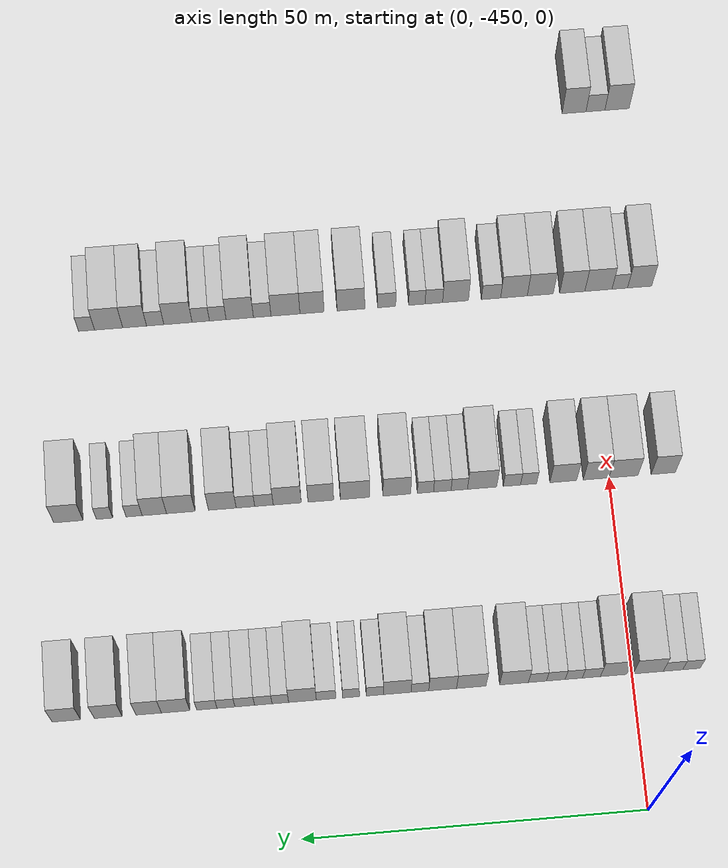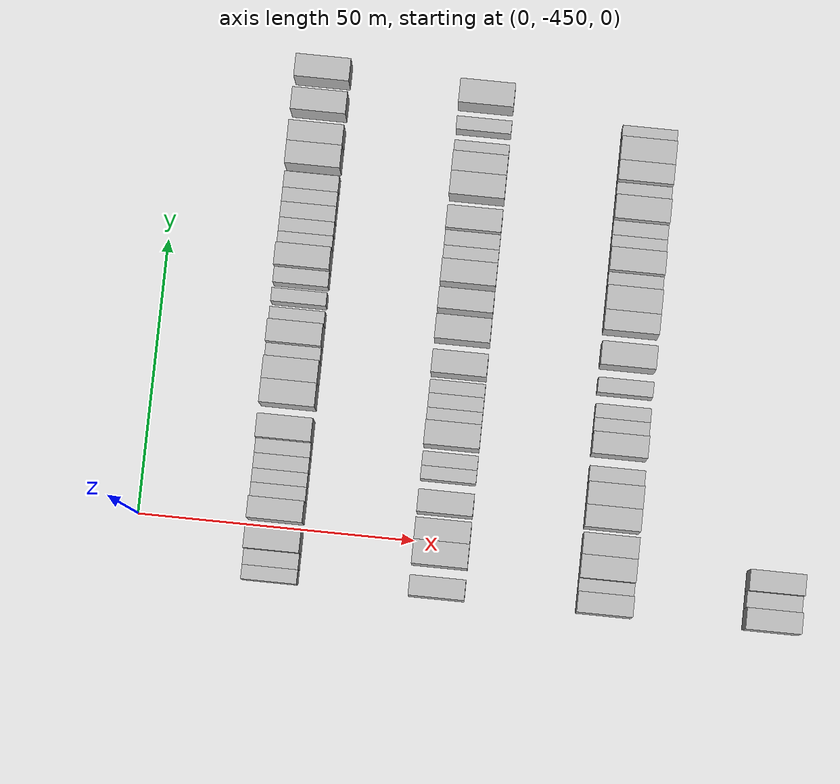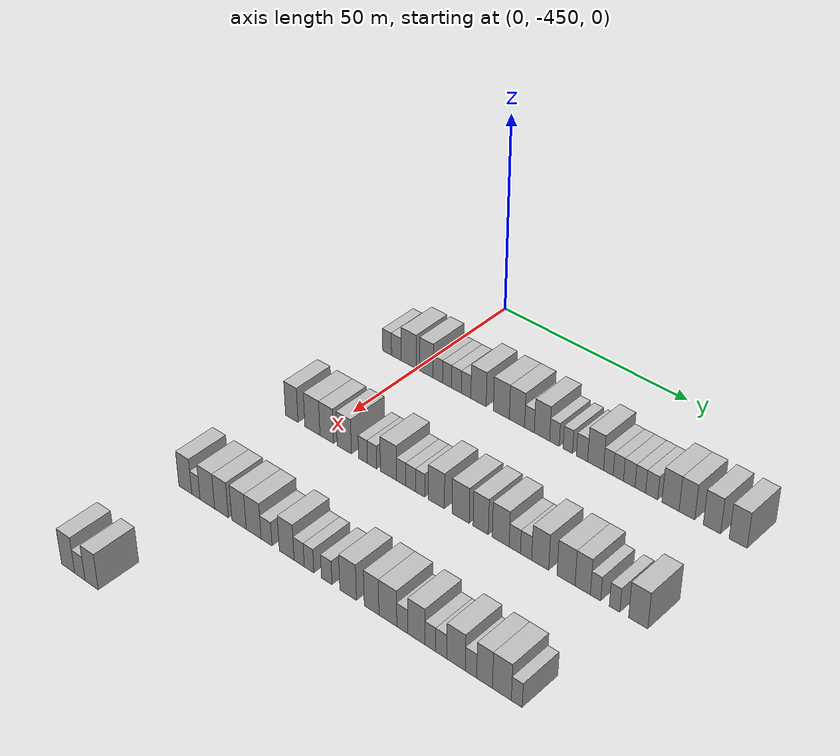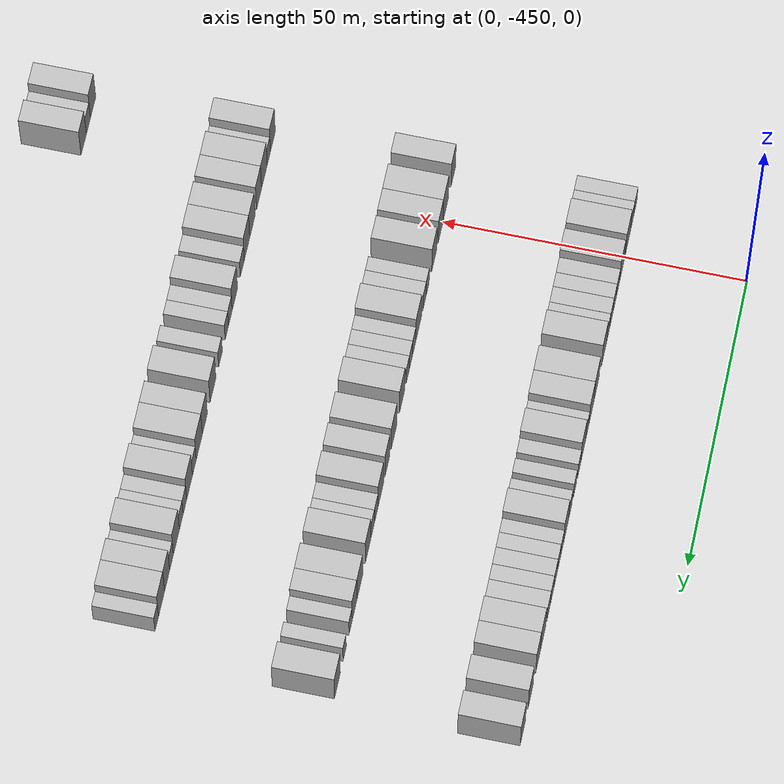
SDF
<sdf version="1.6">
 <world name="default">
  <model name="building_1">
   <static>1</static>
   <pose>25.0000 -458.7097 0 0.000000 0.000000 0.000000</pose>
   <link name="link">
    <pose>0 0 3.00 0 0 0</pose>
    <collision name="collision"><geometry><box><size>10.0000 2.5806 6.0000</size></box></geometry></collision>
    <visual name="visual">
     <cast_shadows>0</cast_shadows>
     <geometry><box><size>10.0000 2.5806 6.0000</size></box></geometry>
     <material>
      <script>
       <uri>model://HANNAS_wall/materials/scripts</uri>
       <uri>model://HANNAS_wall/materials/textures</uri>
       <name>vrc/HANNAS_wall</name>
      </script>
     </material>
    </visual>
   </link>
  </model>
  <model name="building_2">
   <static>1</static>
   <pose>25.0000 -455.9895 0 0.000000 0.000000 0.000000</pose>
   <link name="link">
    <pose>0 0 3.00 0 0 0</pose>
    <collision name="collision"><geometry><box><size>10.0000 2.8598 6.0000</size></box></geometry></collision>
    <visual name="visual">
     <cast_shadows>0</cast_shadows>
     <geometry><box><size>10.0000 2.8598 6.0000</size></box></geometry>
     <material>
      <script>
       <uri>model://HANNAS_wall/materials/scripts</uri>
       <uri>model://HANNAS_wall/materials/textures</uri>
       <name>vrc/HANNAS_wall</name>
      </script>
     </material>
    </visual>
   </link>
  </model>
  <model name="building_3">
   <static>1</static>
   <pose>25.0000 -452.3602 0 0.000000 0.000000 0.000000</pose>
   <link name="link">
    <pose>0 0 4.50 0 0 0</pose>
    <collision name="collision"><geometry><box><size>10.0000 4.3987 9.0000</size></box></geometry></collision>
    <visual name="visual">
     <cast_shadows>0</cast_shadows>
     <geometry><box><size>10.0000 4.3987 9.0000</size></box></geometry>
     <material>
      <script>
       <uri>model://HANNAS_wall/materials/scripts</uri>
       <uri>model://HANNAS_wall/materials/textures</uri>
       <name>vrc/HANNAS_wall</name>
      </script>
     </material>
    </visual>
   </link>
  </model>
  <model name="building_4">
   <static>1</static>
   <pose>25.0000 -447.2321 0 0.000000 0.000000 0.000000</pose>
   <link name="link">
    <pose>0 0 4.50 0 0 0</pose>
    <collision name="collision"><geometry><box><size>10.0000 3.8574 9.0000</size></box></geometry></collision>
    <visual name="visual">
     <cast_shadows>0</cast_shadows>
     <geometry><box><size>10.0000 3.8574 9.0000</size></box></geometry>
     <material>
      <script>
       <uri>model://HANNAS_wall/materials/scripts</uri>
       <uri>model://HANNAS_wall/materials/textures</uri>
       <name>vrc/HANNAS_wall</name>
      </script>
     </material>
    </visual>
   </link>
  </model>
  <model name="building_5">
   <static>1</static>
   <pose>25.0000 -443.9715 0 0.000000 0.000000 0.000000</pose>
   <link name="link">
    <pose>0 0 3.00 0 0 0</pose>
    <collision name="collision"><geometry><box><size>10.0000 2.6639 6.0000</size></box></geometry></collision>
    <visual name="visual">
     <cast_shadows>0</cast_shadows>
     <geometry><box><size>10.0000 2.6639 6.0000</size></box></geometry>
     <material>
      <script>
       <uri>model://HANNAS_wall/materials/scripts</uri>
       <uri>model://HANNAS_wall/materials/textures</uri>
       <name>vrc/HANNAS_wall</name>
      </script>
     </material>
    </visual>
   </link>
  </model>
  <model name="building_6">
   <static>1</static>
   <pose>25.0000 -441.3762 0 0.000000 0.000000 0.000000</pose>
   <link name="link">
    <pose>0 0 3.00 0 0 0</pose>
    <collision name="collision"><geometry><box><size>10.0000 2.5268 6.0000</size></box></geometry></collision>
    <visual name="visual">
     <cast_shadows>0</cast_shadows>
     <geometry><box><size>10.0000 2.5268 6.0000</size></box></geometry>
     <material>
      <script>
       <uri>model://HANNAS_wall/materials/scripts</uri>
       <uri>model://HANNAS_wall/materials/textures</uri>
       <name>vrc/HANNAS_wall</name>
      </script>
     </material>
    </visual>
   </link>
  </model>
  <model name="building_7">
   <static>1</static>
   <pose>25.0000 -438.7373 0 0.000000 0.000000 0.000000</pose>
   <link name="link">
    <pose>0 0 3.00 0 0 0</pose>
    <collision name="collision"><geometry><box><size>10.0000 2.7510 6.0000</size></box></geometry></collision>
    <visual name="visual">
     <cast_shadows>0</cast_shadows>
     <geometry><box><size>10.0000 2.7510 6.0000</size></box></geometry>
     <material>
      <script>
       <uri>model://HANNAS_wall/materials/scripts</uri>
       <uri>model://HANNAS_wall/materials/textures</uri>
       <name>vrc/HANNAS_wall</name>
      </script>
     </material>
    </visual>
   </link>
  </model>
  <model name="building_8">
   <static>1</static>
   <pose>25.0000 -436.0345 0 0.000000 0.000000 0.000000</pose>
   <link name="link">
    <pose>0 0 3.00 0 0 0</pose>
    <collision name="collision"><geometry><box><size>10.0000 2.6544 6.0000</size></box></geometry></collision>
    <visual name="visual">
     <cast_shadows>0</cast_shadows>
     <geometry><box><size>10.0000 2.6544 6.0000</size></box></geometry>
     <material>
      <script>
       <uri>model://HANNAS_wall/materials/scripts</uri>
       <uri>model://HANNAS_wall/materials/textures</uri>
       <name>vrc/HANNAS_wall</name>
      </script>
     </material>
    </visual>
   </link>
  </model>
  <model name="building_9">
   <static>1</static>
   <pose>25.0000 -432.5922 0 0.000000 0.000000 0.000000</pose>
   <link name="link">
    <pose>0 0 4.50 0 0 0</pose>
    <collision name="collision"><geometry><box><size>10.0000 4.2303 9.0000</size></box></geometry></collision>
    <visual name="visual">
     <cast_shadows>0</cast_shadows>
     <geometry><box><size>10.0000 4.2303 9.0000</size></box></geometry>
     <material>
      <script>
       <uri>model://HANNAS_wall/materials/scripts</uri>
       <uri>model://HANNAS_wall/materials/textures</uri>
       <name>vrc/HANNAS_wall</name>
      </script>
     </material>
    </visual>
   </link>
  </model>
  <model name="building_10">
   <static>1</static>
   <pose>25.0000 -426.3155 0 0.000000 0.000000 0.000000</pose>
   <link name="link">
    <pose>0 0 4.50 0 0 0</pose>
    <collision name="collision"><geometry><box><size>10.0000 4.3231 9.0000</size></box></geometry></collision>
    <visual name="visual">
     <cast_shadows>0</cast_shadows>
     <geometry><box><size>10.0000 4.3231 9.0000</size></box></geometry>
     <material>
      <script>
       <uri>model://HANNAS_wall/materials/scripts</uri>
       <uri>model://HANNAS_wall/materials/textures</uri>
       <name>vrc/HANNAS_wall</name>
      </script>
     </material>
    </visual>
   </link>
  </model>
  <model name="building_11">
   <static>1</static>
   <pose>25.0000 -422.1147 0 0.000000 0.000000 0.000000</pose>
   <link name="link">
    <pose>0 0 4.50 0 0 0</pose>
    <collision name="collision"><geometry><box><size>10.0000 4.0785 9.0000</size></box></geometry></collision>
    <visual name="visual">
     <cast_shadows>0</cast_shadows>
     <geometry><box><size>10.0000 4.0785 9.0000</size></box></geometry>
     <material>
      <script>
       <uri>model://HANNAS_wall/materials/scripts</uri>
       <uri>model://HANNAS_wall/materials/textures</uri>
       <name>vrc/HANNAS_wall</name>
      </script>
     </material>
    </visual>
   </link>
  </model>
  <model name="building_12">
   <static>1</static>
   <pose>25.0000 -418.7871 0 0.000000 0.000000 0.000000</pose>
   <link name="link">
    <pose>0 0 3.00 0 0 0</pose>
    <collision name="collision"><geometry><box><size>10.0000 2.5768 6.0000</size></box></geometry></collision>
    <visual name="visual">
     <cast_shadows>0</cast_shadows>
     <geometry><box><size>10.0000 2.5768 6.0000</size></box></geometry>
     <material>
      <script>
       <uri>model://HANNAS_wall/materials/scripts</uri>
       <uri>model://HANNAS_wall/materials/textures</uri>
       <name>vrc/HANNAS_wall</name>
      </script>
     </material>
    </visual>
   </link>
  </model>
  <model name="building_13">
   <static>1</static>
   <pose>25.0000 -415.4768 0 0.000000 0.000000 0.000000</pose>
   <link name="link">
    <pose>0 0 4.50 0 0 0</pose>
    <collision name="collision"><geometry><box><size>10.0000 4.0438 9.0000</size></box></geometry></collision>
    <visual name="visual">
     <cast_shadows>0</cast_shadows>
     <geometry><box><size>10.0000 4.0438 9.0000</size></box></geometry>
     <material>
      <script>
       <uri>model://HANNAS_wall/materials/scripts</uri>
       <uri>model://HANNAS_wall/materials/textures</uri>
       <name>vrc/HANNAS_wall</name>
      </script>
     </material>
    </visual>
   </link>
  </model>
  <model name="building_14">
   <static>1</static>
   <pose>25.0000 -412.1914 0 0.000000 0.000000 0.000000</pose>
   <link name="link">
    <pose>0 0 3.00 0 0 0</pose>
    <collision name="collision"><geometry><box><size>10.0000 2.5270 6.0000</size></box></geometry></collision>
    <visual name="visual">
     <cast_shadows>0</cast_shadows>
     <geometry><box><size>10.0000 2.5270 6.0000</size></box></geometry>
     <material>
      <script>
       <uri>model://HANNAS_wall/materials/scripts</uri>
       <uri>model://HANNAS_wall/materials/textures</uri>
       <name>vrc/HANNAS_wall</name>
      </script>
     </material>
    </visual>
   </link>
  </model>
  <model name="building_15">
   <static>1</static>
   <pose>25.0000 -408.7061 0 0.000000 0.000000 0.000000</pose>
   <link name="link">
    <pose>0 0 3.00 0 0 0</pose>
    <collision name="collision"><geometry><box><size>10.0000 2.4434 6.0000</size></box></geometry></collision>
    <visual name="visual">
     <cast_shadows>0</cast_shadows>
     <geometry><box><size>10.0000 2.4434 6.0000</size></box></geometry>
     <material>
      <script>
       <uri>model://HANNAS_wall/materials/scripts</uri>
       <uri>model://HANNAS_wall/materials/textures</uri>
       <name>vrc/HANNAS_wall</name>
      </script>
     </material>
    </visual>
   </link>
  </model>
  <model name="building_16">
   <static>1</static>
   <pose>25.0000 -405.0560 0 0.000000 0.000000 0.000000</pose>
   <link name="link">
    <pose>0 0 3.00 0 0 0</pose>
    <collision name="collision"><geometry><box><size>10.0000 2.8570 6.0000</size></box></geometry></collision>
    <visual name="visual">
     <cast_shadows>0</cast_shadows>
     <geometry><box><size>10.0000 2.8570 6.0000</size></box></geometry>
     <material>
      <script>
       <uri>model://HANNAS_wall/materials/scripts</uri>
       <uri>model://HANNAS_wall/materials/textures</uri>
       <name>vrc/HANNAS_wall</name>
      </script>
     </material>
    </visual>
   </link>
  </model>
  <model name="building_17">
   <static>1</static>
   <pose>25.0000 -401.5997 0 0.000000 0.000000 0.000000</pose>
   <link name="link">
    <pose>0 0 4.50 0 0 0</pose>
    <collision name="collision"><geometry><box><size>10.0000 4.0554 9.0000</size></box></geometry></collision>
    <visual name="visual">
     <cast_shadows>0</cast_shadows>
     <geometry><box><size>10.0000 4.0554 9.0000</size></box></geometry>
     <material>
      <script>
       <uri>model://HANNAS_wall/materials/scripts</uri>
       <uri>model://HANNAS_wall/materials/textures</uri>
       <name>vrc/HANNAS_wall</name>
      </script>
     </material>
    </visual>
   </link>
  </model>
  <model name="building_18">
   <static>1</static>
   <pose>25.0000 -398.3646 0 0.000000 0.000000 0.000000</pose>
   <link name="link">
    <pose>0 0 3.00 0 0 0</pose>
    <collision name="collision"><geometry><box><size>10.0000 2.4149 6.0000</size></box></geometry></collision>
    <visual name="visual">
     <cast_shadows>0</cast_shadows>
     <geometry><box><size>10.0000 2.4149 6.0000</size></box></geometry>
     <material>
      <script>
       <uri>model://HANNAS_wall/materials/scripts</uri>
       <uri>model://HANNAS_wall/materials/textures</uri>
       <name>vrc/HANNAS_wall</name>
      </script>
     </material>
    </visual>
   </link>
  </model>
  <model name="building_19">
   <static>1</static>
   <pose>25.0000 -395.8780 0 0.000000 0.000000 0.000000</pose>
   <link name="link">
    <pose>0 0 3.00 0 0 0</pose>
    <collision name="collision"><geometry><box><size>10.0000 2.5582 6.0000</size></box></geometry></collision>
    <visual name="visual">
     <cast_shadows>0</cast_shadows>
     <geometry><box><size>10.0000 2.5582 6.0000</size></box></geometry>
     <material>
      <script>
       <uri>model://HANNAS_wall/materials/scripts</uri>
       <uri>model://HANNAS_wall/materials/textures</uri>
       <name>vrc/HANNAS_wall</name>
      </script>
     </material>
    </visual>
   </link>
  </model>
  <model name="building_20">
   <static>1</static>
   <pose>25.0000 -393.1696 0 0.000000 0.000000 0.000000</pose>
   <link name="link">
    <pose>0 0 3.00 0 0 0</pose>
    <collision name="collision"><geometry><box><size>10.0000 2.8586 6.0000</size></box></geometry></collision>
    <visual name="visual">
     <cast_shadows>0</cast_shadows>
     <geometry><box><size>10.0000 2.8586 6.0000</size></box></geometry>
     <material>
      <script>
       <uri>model://HANNAS_wall/materials/scripts</uri>
       <uri>model://HANNAS_wall/materials/textures</uri>
       <name>vrc/HANNAS_wall</name>
      </script>
     </material>
    </visual>
   </link>
  </model>
  <model name="building_21">
   <static>1</static>
   <pose>25.0000 -390.4331 0 0.000000 0.000000 0.000000</pose>
   <link name="link">
    <pose>0 0 3.00 0 0 0</pose>
    <collision name="collision"><geometry><box><size>10.0000 2.6144 6.0000</size></box></geometry></collision>
    <visual name="visual">
     <cast_shadows>0</cast_shadows>
     <geometry><box><size>10.0000 2.6144 6.0000</size></box></geometry>
     <material>
      <script>
       <uri>model://HANNAS_wall/materials/scripts</uri>
       <uri>model://HANNAS_wall/materials/textures</uri>
       <name>vrc/HANNAS_wall</name>
      </script>
     </material>
    </visual>
   </link>
  </model>
  <model name="building_22">
   <static>1</static>
   <pose>25.0000 -387.6450 0 0.000000 0.000000 0.000000</pose>
   <link name="link">
    <pose>0 0 3.00 0 0 0</pose>
    <collision name="collision"><geometry><box><size>10.0000 2.9618 6.0000</size></box></geometry></collision>
    <visual name="visual">
     <cast_shadows>0</cast_shadows>
     <geometry><box><size>10.0000 2.9618 6.0000</size></box></geometry>
     <material>
      <script>
       <uri>model://HANNAS_wall/materials/scripts</uri>
       <uri>model://HANNAS_wall/materials/textures</uri>
       <name>vrc/HANNAS_wall</name>
      </script>
     </material>
    </visual>
   </link>
  </model>
  <model name="building_23">
   <static>1</static>
   <pose>25.0000 -383.0894 0 0.000000 0.000000 0.000000</pose>
   <link name="link">
    <pose>0 0 4.50 0 0 0</pose>
    <collision name="collision"><geometry><box><size>10.0000 4.1492 9.0000</size></box></geometry></collision>
    <visual name="visual">
     <cast_shadows>0</cast_shadows>
     <geometry><box><size>10.0000 4.1492 9.0000</size></box></geometry>
     <material>
      <script>
       <uri>model://HANNAS_wall/materials/scripts</uri>
       <uri>model://HANNAS_wall/materials/textures</uri>
       <name>vrc/HANNAS_wall</name>
      </script>
     </material>
    </visual>
   </link>
  </model>
  <model name="building_24">
   <static>1</static>
   <pose>25.0000 -379.1485 0 0.000000 0.000000 0.000000</pose>
   <link name="link">
    <pose>0 0 4.50 0 0 0</pose>
    <collision name="collision"><geometry><box><size>10.0000 3.7327 9.0000</size></box></geometry></collision>
    <visual name="visual">
     <cast_shadows>0</cast_shadows>
     <geometry><box><size>10.0000 3.7327 9.0000</size></box></geometry>
     <material>
      <script>
       <uri>model://HANNAS_wall/materials/scripts</uri>
       <uri>model://HANNAS_wall/materials/textures</uri>
       <name>vrc/HANNAS_wall</name>
      </script>
     </material>
    </visual>
   </link>
  </model>
  <model name="building_25">
   <static>1</static>
   <pose>25.0000 -373.2622 0 0.000000 0.000000 0.000000</pose>
   <link name="link">
    <pose>0 0 4.50 0 0 0</pose>
    <collision name="collision"><geometry><box><size>10.0000 4.0399 9.0000</size></box></geometry></collision>
    <visual name="visual">
     <cast_shadows>0</cast_shadows>
     <geometry><box><size>10.0000 4.0399 9.0000</size></box></geometry>
     <material>
      <script>
       <uri>model://HANNAS_wall/materials/scripts</uri>
       <uri>model://HANNAS_wall/materials/textures</uri>
       <name>vrc/HANNAS_wall</name>
      </script>
     </material>
    </visual>
   </link>
  </model>
  <model name="building_26">
   <static>1</static>
   <pose>25.0000 -367.1786 0 0.000000 0.000000 0.000000</pose>
   <link name="link">
    <pose>0 0 4.50 0 0 0</pose>
    <collision name="collision"><geometry><box><size>10.0000 4.1273 9.0000</size></box></geometry></collision>
    <visual name="visual">
     <cast_shadows>0</cast_shadows>
     <geometry><box><size>10.0000 4.1273 9.0000</size></box></geometry>
     <material>
      <script>
       <uri>model://HANNAS_wall/materials/scripts</uri>
       <uri>model://HANNAS_wall/materials/textures</uri>
       <name>vrc/HANNAS_wall</name>
      </script>
     </material>
    </visual>
   </link>
  </model>
  <model name="building_231">
   <static>1</static>
   <pose>55.0000 -458.1731 0 0.000000 0.000000 0.000000</pose>
   <link name="link">
    <pose>0 0 4.50 0 0 0</pose>
    <collision name="collision"><geometry><box><size>10.0000 3.6538 9.0000</size></box></geometry></collision>
    <visual name="visual">
     <cast_shadows>0</cast_shadows>
     <geometry><box><size>10.0000 3.6538 9.0000</size></box></geometry>
     <material>
      <script>
       <uri>model://HANNAS_wall/materials/scripts</uri>
       <uri>model://HANNAS_wall/materials/textures</uri>
       <name>vrc/HANNAS_wall</name>
      </script>
     </material>
    </visual>
   </link>
  </model>
  <model name="building_232">
   <static>1</static>
   <pose>55.0000 -452.1603 0 0.000000 0.000000 0.000000</pose>
   <link name="link">
    <pose>0 0 4.50 0 0 0</pose>
    <collision name="collision"><geometry><box><size>10.0000 4.3717 9.0000</size></box></geometry></collision>
    <visual name="visual">
     <cast_shadows>0</cast_shadows>
     <geometry><box><size>10.0000 4.3717 9.0000</size></box></geometry>
     <material>
      <script>
       <uri>model://HANNAS_wall/materials/scripts</uri>
       <uri>model://HANNAS_wall/materials/textures</uri>
       <name>vrc/HANNAS_wall</name>
      </script>
     </material>
    </visual>
   </link>
  </model>
  <model name="building_233">
   <static>1</static>
   <pose>55.0000 -448.0257 0 0.000000 0.000000 0.000000</pose>
   <link name="link">
    <pose>0 0 4.50 0 0 0</pose>
    <collision name="collision"><geometry><box><size>10.0000 3.8976 9.0000</size></box></geometry></collision>
    <visual name="visual">
     <cast_shadows>0</cast_shadows>
     <geometry><box><size>10.0000 3.8976 9.0000</size></box></geometry>
     <material>
      <script>
       <uri>model://HANNAS_wall/materials/scripts</uri>
       <uri>model://HANNAS_wall/materials/textures</uri>
       <name>vrc/HANNAS_wall</name>
      </script>
     </material>
    </visual>
   </link>
  </model>
  <model name="building_234">
   <static>1</static>
   <pose>55.0000 -443.0671 0 0.000000 0.000000 0.000000</pose>
   <link name="link">
    <pose>0 0 4.50 0 0 0</pose>
    <collision name="collision"><geometry><box><size>10.0000 4.0197 9.0000</size></box></geometry></collision>
    <visual name="visual">
     <cast_shadows>0</cast_shadows>
     <geometry><box><size>10.0000 4.0197 9.0000</size></box></geometry>
     <material>
      <script>
       <uri>model://HANNAS_wall/materials/scripts</uri>
       <uri>model://HANNAS_wall/materials/textures</uri>
       <name>vrc/HANNAS_wall</name>
      </script>
     </material>
    </visual>
   </link>
  </model>
  <model name="building_235">
   <static>1</static>
   <pose>55.0000 -437.8463 0 0.000000 0.000000 0.000000</pose>
   <link name="link">
    <pose>0 0 3.00 0 0 0</pose>
    <collision name="collision"><geometry><box><size>10.0000 2.4219 6.0000</size></box></geometry></collision>
    <visual name="visual">
     <cast_shadows>0</cast_shadows>
     <geometry><box><size>10.0000 2.4219 6.0000</size></box></geometry>
     <material>
      <script>
       <uri>model://HANNAS_wall/materials/scripts</uri>
       <uri>model://HANNAS_wall/materials/textures</uri>
       <name>vrc/HANNAS_wall</name>
      </script>
     </material>
    </visual>
   </link>
  </model>
  <model name="building_236">
   <static>1</static>
   <pose>55.0000 -435.3372 0 0.000000 0.000000 0.000000</pose>
   <link name="link">
    <pose>0 0 3.00 0 0 0</pose>
    <collision name="collision"><geometry><box><size>10.0000 2.5964 6.0000</size></box></geometry></collision>
    <visual name="visual">
     <cast_shadows>0</cast_shadows>
     <geometry><box><size>10.0000 2.5964 6.0000</size></box></geometry>
     <material>
      <script>
       <uri>model://HANNAS_wall/materials/scripts</uri>
       <uri>model://HANNAS_wall/materials/textures</uri>
       <name>vrc/HANNAS_wall</name>
      </script>
     </material>
    </visual>
   </link>
  </model>
  <model name="building_237">
   <static>1</static>
   <pose>55.0000 -430.8440 0 0.000000 0.000000 0.000000</pose>
   <link name="link">
    <pose>0 0 4.50 0 0 0</pose>
    <collision name="collision"><geometry><box><size>10.0000 4.3901 9.0000</size></box></geometry></collision>
    <visual name="visual">
     <cast_shadows>0</cast_shadows>
     <geometry><box><size>10.0000 4.3901 9.0000</size></box></geometry>
     <material>
      <script>
       <uri>model://HANNAS_wall/materials/scripts</uri>
       <uri>model://HANNAS_wall/materials/textures</uri>
       <name>vrc/HANNAS_wall</name>
      </script>
     </material>
    </visual>
   </link>
  </model>
  <model name="building_238">
   <static>1</static>
   <pose>55.0000 -427.4133 0 0.000000 0.000000 0.000000</pose>
   <link name="link">
    <pose>0 0 3.00 0 0 0</pose>
    <collision name="collision"><geometry><box><size>10.0000 2.4713 6.0000</size></box></geometry></collision>
    <visual name="visual">
     <cast_shadows>0</cast_shadows>
     <geometry><box><size>10.0000 2.4713 6.0000</size></box></geometry>
     <material>
      <script>
       <uri>model://HANNAS_wall/materials/scripts</uri>
       <uri>model://HANNAS_wall/materials/textures</uri>
       <name>vrc/HANNAS_wall</name>
      </script>
     </material>
    </visual>
   </link>
  </model>
  <model name="building_239">
   <static>1</static>
   <pose>55.0000 -424.8613 0 0.000000 0.000000 0.000000</pose>
   <link name="link">
    <pose>0 0 3.00 0 0 0</pose>
    <collision name="collision"><geometry><box><size>10.0000 2.6327 6.0000</size></box></geometry></collision>
    <visual name="visual">
     <cast_shadows>0</cast_shadows>
     <geometry><box><size>10.0000 2.6327 6.0000</size></box></geometry>
     <material>
      <script>
       <uri>model://HANNAS_wall/materials/scripts</uri>
       <uri>model://HANNAS_wall/materials/textures</uri>
       <name>vrc/HANNAS_wall</name>
      </script>
     </material>
    </visual>
   </link>
  </model>
  <model name="building_240">
   <static>1</static>
   <pose>55.0000 -422.3257 0 0.000000 0.000000 0.000000</pose>
   <link name="link">
    <pose>0 0 3.00 0 0 0</pose>
    <collision name="collision"><geometry><box><size>10.0000 2.4384 6.0000</size></box></geometry></collision>
    <visual name="visual">
     <cast_shadows>0</cast_shadows>
     <geometry><box><size>10.0000 2.4384 6.0000</size></box></geometry>
     <material>
      <script>
       <uri>model://HANNAS_wall/materials/scripts</uri>
       <uri>model://HANNAS_wall/materials/textures</uri>
       <name>vrc/HANNAS_wall</name>
      </script>
     </material>
    </visual>
   </link>
  </model>
  <model name="building_241">
   <static>1</static>
   <pose>55.0000 -418.0294 0 0.000000 0.000000 0.000000</pose>
   <link name="link">
    <pose>0 0 4.50 0 0 0</pose>
    <collision name="collision"><geometry><box><size>10.0000 4.1543 9.0000</size></box></geometry></collision>
    <visual name="visual">
     <cast_shadows>0</cast_shadows>
     <geometry><box><size>10.0000 4.1543 9.0000</size></box></geometry>
     <material>
      <script>
       <uri>model://HANNAS_wall/materials/scripts</uri>
       <uri>model://HANNAS_wall/materials/textures</uri>
       <name>vrc/HANNAS_wall</name>
      </script>
     </material>
    </visual>
   </link>
  </model>
  <model name="building_242">
   <static>1</static>
   <pose>55.0000 -411.7472 0 0.000000 0.000000 0.000000</pose>
   <link name="link">
    <pose>0 0 4.50 0 0 0</pose>
    <collision name="collision"><geometry><box><size>10.0000 4.4101 9.0000</size></box></geometry></collision>
    <visual name="visual">
     <cast_shadows>0</cast_shadows>
     <geometry><box><size>10.0000 4.4101 9.0000</size></box></geometry>
     <material>
      <script>
       <uri>model://HANNAS_wall/materials/scripts</uri>
       <uri>model://HANNAS_wall/materials/textures</uri>
       <name>vrc/HANNAS_wall</name>
      </script>
     </material>
    </visual>
   </link>
  </model>
  <model name="building_243">
   <static>1</static>
   <pose>55.0000 -406.6129 0 0.000000 0.000000 0.000000</pose>
   <link name="link">
    <pose>0 0 4.50 0 0 0</pose>
    <collision name="collision"><geometry><box><size>10.0000 3.8586 9.0000</size></box></geometry></collision>
    <visual name="visual">
     <cast_shadows>0</cast_shadows>
     <geometry><box><size>10.0000 3.8586 9.0000</size></box></geometry>
     <material>
      <script>
       <uri>model://HANNAS_wall/materials/scripts</uri>
       <uri>model://HANNAS_wall/materials/textures</uri>
       <name>vrc/HANNAS_wall</name>
      </script>
     </material>
    </visual>
   </link>
  </model>
  <model name="building_244">
   <static>1</static>
   <pose>55.0000 -401.5785 0 0.000000 0.000000 0.000000</pose>
   <link name="link">
    <pose>0 0 4.50 0 0 0</pose>
    <collision name="collision"><geometry><box><size>10.0000 4.2103 9.0000</size></box></geometry></collision>
    <visual name="visual">
     <cast_shadows>0</cast_shadows>
     <geometry><box><size>10.0000 4.2103 9.0000</size></box></geometry>
     <material>
      <script>
       <uri>model://HANNAS_wall/materials/scripts</uri>
       <uri>model://HANNAS_wall/materials/textures</uri>
       <name>vrc/HANNAS_wall</name>
      </script>
     </material>
    </visual>
   </link>
  </model>
  <model name="building_245">
   <static>1</static>
   <pose>55.0000 -398.0883 0 0.000000 0.000000 0.000000</pose>
   <link name="link">
    <pose>0 0 3.00 0 0 0</pose>
    <collision name="collision"><geometry><box><size>10.0000 2.7701 6.0000</size></box></geometry></collision>
    <visual name="visual">
     <cast_shadows>0</cast_shadows>
     <geometry><box><size>10.0000 2.7701 6.0000</size></box></geometry>
     <material>
      <script>
       <uri>model://HANNAS_wall/materials/scripts</uri>
       <uri>model://HANNAS_wall/materials/textures</uri>
       <name>vrc/HANNAS_wall</name>
      </script>
     </material>
    </visual>
   </link>
  </model>
  <model name="building_246">
   <static>1</static>
   <pose>55.0000 -395.3149 0 0.000000 0.000000 0.000000</pose>
   <link name="link">
    <pose>0 0 3.00 0 0 0</pose>
    <collision name="collision"><geometry><box><size>10.0000 2.7766 6.0000</size></box></geometry></collision>
    <visual name="visual">
     <cast_shadows>0</cast_shadows>
     <geometry><box><size>10.0000 2.7766 6.0000</size></box></geometry>
     <material>
      <script>
       <uri>model://HANNAS_wall/materials/scripts</uri>
       <uri>model://HANNAS_wall/materials/textures</uri>
       <name>vrc/HANNAS_wall</name>
      </script>
     </material>
    </visual>
   </link>
  </model>
  <model name="building_247">
   <static>1</static>
   <pose>55.0000 -391.8564 0 0.000000 0.000000 0.000000</pose>
   <link name="link">
    <pose>0 0 4.50 0 0 0</pose>
    <collision name="collision"><geometry><box><size>10.0000 4.1406 9.0000</size></box></geometry></collision>
    <visual name="visual">
     <cast_shadows>0</cast_shadows>
     <geometry><box><size>10.0000 4.1406 9.0000</size></box></geometry>
     <material>
      <script>
       <uri>model://HANNAS_wall/materials/scripts</uri>
       <uri>model://HANNAS_wall/materials/textures</uri>
       <name>vrc/HANNAS_wall</name>
      </script>
     </material>
    </visual>
   </link>
  </model>
  <model name="building_248">
   <static>1</static>
   <pose>55.0000 -385.6453 0 0.000000 0.000000 0.000000</pose>
   <link name="link">
    <pose>0 0 4.50 0 0 0</pose>
    <collision name="collision"><geometry><box><size>10.0000 4.2816 9.0000</size></box></geometry></collision>
    <visual name="visual">
     <cast_shadows>0</cast_shadows>
     <geometry><box><size>10.0000 4.2816 9.0000</size></box></geometry>
     <material>
      <script>
       <uri>model://HANNAS_wall/materials/scripts</uri>
       <uri>model://HANNAS_wall/materials/textures</uri>
       <name>vrc/HANNAS_wall</name>
      </script>
     </material>
    </visual>
   </link>
  </model>
  <model name="building_249">
   <static>1</static>
   <pose>55.0000 -381.6873 0 0.000000 0.000000 0.000000</pose>
   <link name="link">
    <pose>0 0 4.50 0 0 0</pose>
    <collision name="collision"><geometry><box><size>10.0000 3.6344 9.0000</size></box></geometry></collision>
    <visual name="visual">
     <cast_shadows>0</cast_shadows>
     <geometry><box><size>10.0000 3.6344 9.0000</size></box></geometry>
     <material>
      <script>
       <uri>model://HANNAS_wall/materials/scripts</uri>
       <uri>model://HANNAS_wall/materials/textures</uri>
       <name>vrc/HANNAS_wall</name>
      </script>
     </material>
    </visual>
   </link>
  </model>
  <model name="building_250">
   <static>1</static>
   <pose>55.0000 -378.6671 0 0.000000 0.000000 0.000000</pose>
   <link name="link">
    <pose>0 0 3.00 0 0 0</pose>
    <collision name="collision"><geometry><box><size>10.0000 2.4061 6.0000</size></box></geometry></collision>
    <visual name="visual">
     <cast_shadows>0</cast_shadows>
     <geometry><box><size>10.0000 2.4061 6.0000</size></box></geometry>
     <material>
      <script>
       <uri>model://HANNAS_wall/materials/scripts</uri>
       <uri>model://HANNAS_wall/materials/textures</uri>
       <name>vrc/HANNAS_wall</name>
      </script>
     </material>
    </visual>
   </link>
  </model>
  <model name="building_251">
   <static>1</static>
   <pose>55.0000 -374.2510 0 0.000000 0.000000 0.000000</pose>
   <link name="link">
    <pose>0 0 3.00 0 0 0</pose>
    <collision name="collision"><geometry><box><size>10.0000 2.4262 6.0000</size></box></geometry></collision>
    <visual name="visual">
     <cast_shadows>0</cast_shadows>
     <geometry><box><size>10.0000 2.4262 6.0000</size></box></geometry>
     <material>
      <script>
       <uri>model://HANNAS_wall/materials/scripts</uri>
       <uri>model://HANNAS_wall/materials/textures</uri>
       <name>vrc/HANNAS_wall</name>
      </script>
     </material>
    </visual>
   </link>
  </model>
  <model name="building_252">
   <static>1</static>
   <pose>55.0000 -368.8526 0 0.000000 0.000000 0.000000</pose>
   <link name="link">
    <pose>0 0 4.50 0 0 0</pose>
    <collision name="collision"><geometry><box><size>10.0000 4.3706 9.0000</size></box></geometry></collision>
    <visual name="visual">
     <cast_shadows>0</cast_shadows>
     <geometry><box><size>10.0000 4.3706 9.0000</size></box></geometry>
     <material>
      <script>
       <uri>model://HANNAS_wall/materials/scripts</uri>
       <uri>model://HANNAS_wall/materials/textures</uri>
       <name>vrc/HANNAS_wall</name>
      </script>
     </material>
    </visual>
   </link>
  </model>
  <model name="building_460">
   <static>1</static>
   <pose>85.0000 -458.1294 0 0.000000 0.000000 0.000000</pose>
   <link name="link">
    <pose>0 0 4.50 0 0 0</pose>
    <collision name="collision"><geometry><box><size>10.0000 3.7412 9.0000</size></box></geometry></collision>
    <visual name="visual">
     <cast_shadows>0</cast_shadows>
     <geometry><box><size>10.0000 3.7412 9.0000</size></box></geometry>
     <material>
      <script>
       <uri>model://HANNAS_wall/materials/scripts</uri>
       <uri>model://HANNAS_wall/materials/textures</uri>
       <name>vrc/HANNAS_wall</name>
      </script>
     </material>
    </visual>
   </link>
  </model>
  <model name="building_461">
   <static>1</static>
   <pose>85.0000 -455.0566 0 0.000000 0.000000 0.000000</pose>
   <link name="link">
    <pose>0 0 3.00 0 0 0</pose>
    <collision name="collision"><geometry><box><size>10.0000 2.4045 6.0000</size></box></geometry></collision>
    <visual name="visual">
     <cast_shadows>0</cast_shadows>
     <geometry><box><size>10.0000 2.4045 6.0000</size></box></geometry>
     <material>
      <script>
       <uri>model://HANNAS_wall/materials/scripts</uri>
       <uri>model://HANNAS_wall/materials/textures</uri>
       <name>vrc/HANNAS_wall</name>
      </script>
     </material>
    </visual>
   </link>
  </model>
  <model name="building_462">
   <static>1</static>
   <pose>85.0000 -451.7571 0 0.000000 0.000000 0.000000</pose>
   <link name="link">
    <pose>0 0 4.50 0 0 0</pose>
    <collision name="collision"><geometry><box><size>10.0000 4.1944 9.0000</size></box></geometry></collision>
    <visual name="visual">
     <cast_shadows>0</cast_shadows>
     <geometry><box><size>10.0000 4.1944 9.0000</size></box></geometry>
     <material>
      <script>
       <uri>model://HANNAS_wall/materials/scripts</uri>
       <uri>model://HANNAS_wall/materials/textures</uri>
       <name>vrc/HANNAS_wall</name>
      </script>
     </material>
    </visual>
   </link>
  </model>
  <model name="building_463">
   <static>1</static>
   <pose>85.0000 -447.7177 0 0.000000 0.000000 0.000000</pose>
   <link name="link">
    <pose>0 0 4.50 0 0 0</pose>
    <collision name="collision"><geometry><box><size>10.0000 3.8843 9.0000</size></box></geometry></collision>
    <visual name="visual">
     <cast_shadows>0</cast_shadows>
     <geometry><box><size>10.0000 3.8843 9.0000</size></box></geometry>
     <material>
      <script>
       <uri>model://HANNAS_wall/materials/scripts</uri>
       <uri>model://HANNAS_wall/materials/textures</uri>
       <name>vrc/HANNAS_wall</name>
      </script>
     </material>
    </visual>
   </link>
  </model>
  <model name="building_464">
   <static>1</static>
   <pose>85.0000 -442.7733 0 0.000000 0.000000 0.000000</pose>
   <link name="link">
    <pose>0 0 4.50 0 0 0</pose>
    <collision name="collision"><geometry><box><size>10.0000 4.0045 9.0000</size></box></geometry></collision>
    <visual name="visual">
     <cast_shadows>0</cast_shadows>
     <geometry><box><size>10.0000 4.0045 9.0000</size></box></geometry>
     <material>
      <script>
       <uri>model://HANNAS_wall/materials/scripts</uri>
       <uri>model://HANNAS_wall/materials/textures</uri>
       <name>vrc/HANNAS_wall</name>
      </script>
     </material>
    </visual>
   </link>
  </model>
  <model name="building_465">
   <static>1</static>
   <pose>85.0000 -438.7107 0 0.000000 0.000000 0.000000</pose>
   <link name="link">
    <pose>0 0 4.50 0 0 0</pose>
    <collision name="collision"><geometry><box><size>10.0000 4.1207 9.0000</size></box></geometry></collision>
    <visual name="visual">
     <cast_shadows>0</cast_shadows>
     <geometry><box><size>10.0000 4.1207 9.0000</size></box></geometry>
     <material>
      <script>
       <uri>model://HANNAS_wall/materials/scripts</uri>
       <uri>model://HANNAS_wall/materials/textures</uri>
       <name>vrc/HANNAS_wall</name>
      </script>
     </material>
    </visual>
   </link>
  </model>
  <model name="building_466">
   <static>1</static>
   <pose>85.0000 -435.1629 0 0.000000 0.000000 0.000000</pose>
   <link name="link">
    <pose>0 0 3.00 0 0 0</pose>
    <collision name="collision"><geometry><box><size>10.0000 2.9750 6.0000</size></box></geometry></collision>
    <visual name="visual">
     <cast_shadows>0</cast_shadows>
     <geometry><box><size>10.0000 2.9750 6.0000</size></box></geometry>
     <material>
      <script>
       <uri>model://HANNAS_wall/materials/scripts</uri>
       <uri>model://HANNAS_wall/materials/textures</uri>
       <name>vrc/HANNAS_wall</name>
      </script>
     </material>
    </visual>
   </link>
  </model>
  <model name="building_467">
   <static>1</static>
   <pose>85.0000 -429.6858 0 0.000000 0.000000 0.000000</pose>
   <link name="link">
    <pose>0 0 4.50 0 0 0</pose>
    <collision name="collision"><geometry><box><size>10.0000 3.9792 9.0000</size></box></geometry></collision>
    <visual name="visual">
     <cast_shadows>0</cast_shadows>
     <geometry><box><size>10.0000 3.9792 9.0000</size></box></geometry>
     <material>
      <script>
       <uri>model://HANNAS_wall/materials/scripts</uri>
       <uri>model://HANNAS_wall/materials/textures</uri>
       <name>vrc/HANNAS_wall</name>
      </script>
     </material>
    </visual>
   </link>
  </model>
  <model name="building_468">
   <static>1</static>
   <pose>85.0000 -426.3473 0 0.000000 0.000000 0.000000</pose>
   <link name="link">
    <pose>0 0 3.00 0 0 0</pose>
    <collision name="collision"><geometry><box><size>10.0000 2.6978 6.0000</size></box></geometry></collision>
    <visual name="visual">
     <cast_shadows>0</cast_shadows>
     <geometry><box><size>10.0000 2.6978 6.0000</size></box></geometry>
     <material>
      <script>
       <uri>model://HANNAS_wall/materials/scripts</uri>
       <uri>model://HANNAS_wall/materials/textures</uri>
       <name>vrc/HANNAS_wall</name>
      </script>
     </material>
    </visual>
   </link>
  </model>
  <model name="building_469">
   <static>1</static>
   <pose>85.0000 -423.7335 0 0.000000 0.000000 0.000000</pose>
   <link name="link">
    <pose>0 0 3.00 0 0 0</pose>
    <collision name="collision"><geometry><box><size>10.0000 2.5300 6.0000</size></box></geometry></collision>
    <visual name="visual">
     <cast_shadows>0</cast_shadows>
     <geometry><box><size>10.0000 2.5300 6.0000</size></box></geometry>
     <material>
      <script>
       <uri>model://HANNAS_wall/materials/scripts</uri>
       <uri>model://HANNAS_wall/materials/textures</uri>
       <name>vrc/HANNAS_wall</name>
      </script>
     </material>
    </visual>
   </link>
  </model>
  <model name="building_470">
   <static>1</static>
   <pose>85.0000 -419.0818 0 0.000000 0.000000 0.000000</pose>
   <link name="link">
    <pose>0 0 3.00 0 0 0</pose>
    <collision name="collision"><geometry><box><size>10.0000 2.7733 6.0000</size></box></geometry></collision>
    <visual name="visual">
     <cast_shadows>0</cast_shadows>
     <geometry><box><size>10.0000 2.7733 6.0000</size></box></geometry>
     <material>
      <script>
       <uri>model://HANNAS_wall/materials/scripts</uri>
       <uri>model://HANNAS_wall/materials/textures</uri>
       <name>vrc/HANNAS_wall</name>
      </script>
     </material>
    </visual>
   </link>
  </model>
  <model name="building_471">
   <static>1</static>
   <pose>85.0000 -413.5660 0 0.000000 0.000000 0.000000</pose>
   <link name="link">
    <pose>0 0 4.50 0 0 0</pose>
    <collision name="collision"><geometry><box><size>10.0000 4.2583 9.0000</size></box></geometry></collision>
    <visual name="visual">
     <cast_shadows>0</cast_shadows>
     <geometry><box><size>10.0000 4.2583 9.0000</size></box></geometry>
     <material>
      <script>
       <uri>model://HANNAS_wall/materials/scripts</uri>
       <uri>model://HANNAS_wall/materials/textures</uri>
       <name>vrc/HANNAS_wall</name>
      </script>
     </material>
    </visual>
   </link>
  </model>
  <model name="building_472">
   <static>1</static>
   <pose>85.0000 -407.5872 0 0.000000 0.000000 0.000000</pose>
   <link name="link">
    <pose>0 0 4.50 0 0 0</pose>
    <collision name="collision"><geometry><box><size>10.0000 3.6994 9.0000</size></box></geometry></collision>
    <visual name="visual">
     <cast_shadows>0</cast_shadows>
     <geometry><box><size>10.0000 3.6994 9.0000</size></box></geometry>
     <material>
      <script>
       <uri>model://HANNAS_wall/materials/scripts</uri>
       <uri>model://HANNAS_wall/materials/textures</uri>
       <name>vrc/HANNAS_wall</name>
      </script>
     </material>
    </visual>
   </link>
  </model>
  <model name="building_473">
   <static>1</static>
   <pose>85.0000 -403.5182 0 0.000000 0.000000 0.000000</pose>
   <link name="link">
    <pose>0 0 4.50 0 0 0</pose>
    <collision name="collision"><geometry><box><size>10.0000 4.4385 9.0000</size></box></geometry></collision>
    <visual name="visual">
     <cast_shadows>0</cast_shadows>
     <geometry><box><size>10.0000 4.4385 9.0000</size></box></geometry>
     <material>
      <script>
       <uri>model://HANNAS_wall/materials/scripts</uri>
       <uri>model://HANNAS_wall/materials/textures</uri>
       <name>vrc/HANNAS_wall</name>
      </script>
     </material>
    </visual>
   </link>
  </model>
  <model name="building_474">
   <static>1</static>
   <pose>85.0000 -399.9488 0 0.000000 0.000000 0.000000</pose>
   <link name="link">
    <pose>0 0 3.00 0 0 0</pose>
    <collision name="collision"><geometry><box><size>10.0000 2.7002 6.0000</size></box></geometry></collision>
    <visual name="visual">
     <cast_shadows>0</cast_shadows>
     <geometry><box><size>10.0000 2.7002 6.0000</size></box></geometry>
     <material>
      <script>
       <uri>model://HANNAS_wall/materials/scripts</uri>
       <uri>model://HANNAS_wall/materials/textures</uri>
       <name>vrc/HANNAS_wall</name>
      </script>
     </material>
    </visual>
   </link>
  </model>
  <model name="building_475">
   <static>1</static>
   <pose>85.0000 -396.4988 0 0.000000 0.000000 0.000000</pose>
   <link name="link">
    <pose>0 0 4.50 0 0 0</pose>
    <collision name="collision"><geometry><box><size>10.0000 4.2000 9.0000</size></box></geometry></collision>
    <visual name="visual">
     <cast_shadows>0</cast_shadows>
     <geometry><box><size>10.0000 4.2000 9.0000</size></box></geometry>
     <material>
      <script>
       <uri>model://HANNAS_wall/materials/scripts</uri>
       <uri>model://HANNAS_wall/materials/textures</uri>
       <name>vrc/HANNAS_wall</name>
      </script>
     </material>
    </visual>
   </link>
  </model>
  <model name="building_476">
   <static>1</static>
   <pose>85.0000 -393.1213 0 0.000000 0.000000 0.000000</pose>
   <link name="link">
    <pose>0 0 3.00 0 0 0</pose>
    <collision name="collision"><geometry><box><size>10.0000 2.5550 6.0000</size></box></geometry></collision>
    <visual name="visual">
     <cast_shadows>0</cast_shadows>
     <geometry><box><size>10.0000 2.5550 6.0000</size></box></geometry>
     <material>
      <script>
       <uri>model://HANNAS_wall/materials/scripts</uri>
       <uri>model://HANNAS_wall/materials/textures</uri>
       <name>vrc/HANNAS_wall</name>
      </script>
     </material>
    </visual>
   </link>
  </model>
  <model name="building_477">
   <static>1</static>
   <pose>85.0000 -390.5141 0 0.000000 0.000000 0.000000</pose>
   <link name="link">
    <pose>0 0 3.00 0 0 0</pose>
    <collision name="collision"><geometry><box><size>10.0000 2.6592 6.0000</size></box></geometry></collision>
    <visual name="visual">
     <cast_shadows>0</cast_shadows>
     <geometry><box><size>10.0000 2.6592 6.0000</size></box></geometry>
     <material>
      <script>
       <uri>model://HANNAS_wall/materials/scripts</uri>
       <uri>model://HANNAS_wall/materials/textures</uri>
       <name>vrc/HANNAS_wall</name>
      </script>
     </material>
    </visual>
   </link>
  </model>
  <model name="building_478">
   <static>1</static>
   <pose>85.0000 -387.0198 0 0.000000 0.000000 0.000000</pose>
   <link name="link">
    <pose>0 0 4.50 0 0 0</pose>
    <collision name="collision"><geometry><box><size>10.0000 4.3295 9.0000</size></box></geometry></collision>
    <visual name="visual">
     <cast_shadows>0</cast_shadows>
     <geometry><box><size>10.0000 4.3295 9.0000</size></box></geometry>
     <material>
      <script>
       <uri>model://HANNAS_wall/materials/scripts</uri>
       <uri>model://HANNAS_wall/materials/textures</uri>
       <name>vrc/HANNAS_wall</name>
      </script>
     </material>
    </visual>
   </link>
  </model>
  <model name="building_479">
   <static>1</static>
   <pose>85.0000 -383.5221 0 0.000000 0.000000 0.000000</pose>
   <link name="link">
    <pose>0 0 3.00 0 0 0</pose>
    <collision name="collision"><geometry><box><size>10.0000 2.6658 6.0000</size></box></geometry></collision>
    <visual name="visual">
     <cast_shadows>0</cast_shadows>
     <geometry><box><size>10.0000 2.6658 6.0000</size></box></geometry>
     <material>
      <script>
       <uri>model://HANNAS_wall/materials/scripts</uri>
       <uri>model://HANNAS_wall/materials/textures</uri>
       <name>vrc/HANNAS_wall</name>
      </script>
     </material>
    </visual>
   </link>
  </model>
  <model name="building_480">
   <static>1</static>
   <pose>85.0000 -380.3697 0 0.000000 0.000000 0.000000</pose>
   <link name="link">
    <pose>0 0 4.50 0 0 0</pose>
    <collision name="collision"><geometry><box><size>10.0000 3.6390 9.0000</size></box></geometry></collision>
    <visual name="visual">
     <cast_shadows>0</cast_shadows>
     <geometry><box><size>10.0000 3.6390 9.0000</size></box></geometry>
     <material>
      <script>
       <uri>model://HANNAS_wall/materials/scripts</uri>
       <uri>model://HANNAS_wall/materials/textures</uri>
       <name>vrc/HANNAS_wall</name>
      </script>
     </material>
    </visual>
   </link>
  </model>
  <model name="building_481">
   <static>1</static>
   <pose>85.0000 -376.3928 0 0.000000 0.000000 0.000000</pose>
   <link name="link">
    <pose>0 0 4.50 0 0 0</pose>
    <collision name="collision"><geometry><box><size>10.0000 4.3146 9.0000</size></box></geometry></collision>
    <visual name="visual">
     <cast_shadows>0</cast_shadows>
     <geometry><box><size>10.0000 4.3146 9.0000</size></box></geometry>
     <material>
      <script>
       <uri>model://HANNAS_wall/materials/scripts</uri>
       <uri>model://HANNAS_wall/materials/textures</uri>
       <name>vrc/HANNAS_wall</name>
      </script>
     </material>
    </visual>
   </link>
  </model>
  <model name="building_482">
   <static>1</static>
   <pose>85.0000 -373.0041 0 0.000000 0.000000 0.000000</pose>
   <link name="link">
    <pose>0 0 3.00 0 0 0</pose>
    <collision name="collision"><geometry><box><size>10.0000 2.4629 6.0000</size></box></geometry></collision>
    <visual name="visual">
     <cast_shadows>0</cast_shadows>
     <geometry><box><size>10.0000 2.4629 6.0000</size></box></geometry>
     <material>
      <script>
       <uri>model://HANNAS_wall/materials/scripts</uri>
       <uri>model://HANNAS_wall/materials/textures</uri>
       <name>vrc/HANNAS_wall</name>
      </script>
     </material>
    </visual>
   </link>
  </model>
  <model name="building_696">
   <static>1</static>
   <pose>115.0000 -458.0772 0 0.000000 0.000000 0.000000</pose>
   <link name="link">
    <pose>0 0 4.50 0 0 0</pose>
    <collision name="collision"><geometry><box><size>10.0000 3.8455 9.0000</size></box></geometry></collision>
    <visual name="visual">
     <cast_shadows>0</cast_shadows>
     <geometry><box><size>10.0000 3.8455 9.0000</size></box></geometry>
     <material>
      <script>
       <uri>model://HANNAS_wall/materials/scripts</uri>
       <uri>model://HANNAS_wall/materials/textures</uri>
       <name>vrc/HANNAS_wall</name>
      </script>
     </material>
    </visual>
   </link>
  </model>
  <model name="building_697">
   <static>1</static>
   <pose>115.0000 -454.6597 0 0.000000 0.000000 0.000000</pose>
   <link name="link">
    <pose>0 0 3.00 0 0 0</pose>
    <collision name="collision"><geometry><box><size>10.0000 2.9894 6.0000</size></box></geometry></collision>
    <visual name="visual">
     <cast_shadows>0</cast_shadows>
     <geometry><box><size>10.0000 2.9894 6.0000</size></box></geometry>
     <material>
      <script>
       <uri>model://HANNAS_wall/materials/scripts</uri>
       <uri>model://HANNAS_wall/materials/textures</uri>
       <name>vrc/HANNAS_wall</name>
      </script>
     </material>
    </visual>
   </link>
  </model>
  <model name="building_698">
   <static>1</static>
   <pose>115.0000 -451.2695 0 0.000000 0.000000 0.000000</pose>
   <link name="link">
    <pose>0 0 4.50 0 0 0</pose>
    <collision name="collision"><geometry><box><size>10.0000 3.7910 9.0000</size></box></geometry></collision>
    <visual name="visual">
     <cast_shadows>0</cast_shadows>
     <geometry><box><size>10.0000 3.7910 9.0000</size></box></geometry>
     <material>
      <script>
       <uri>model://HANNAS_wall/materials/scripts</uri>
       <uri>model://HANNAS_wall/materials/textures</uri>
       <name>vrc/HANNAS_wall</name>
      </script>
     </material>
    </visual>
   </link>
  </model>
 </world>
</sdf>
